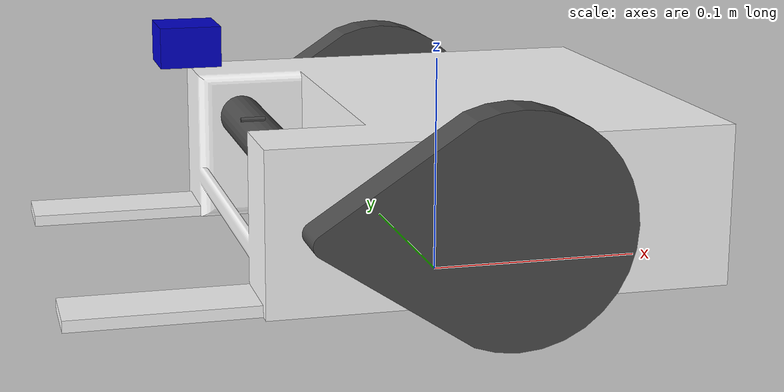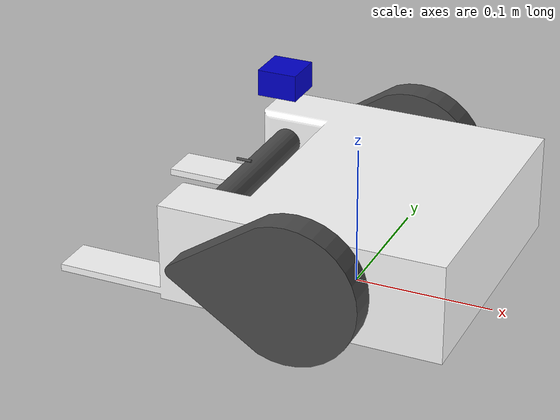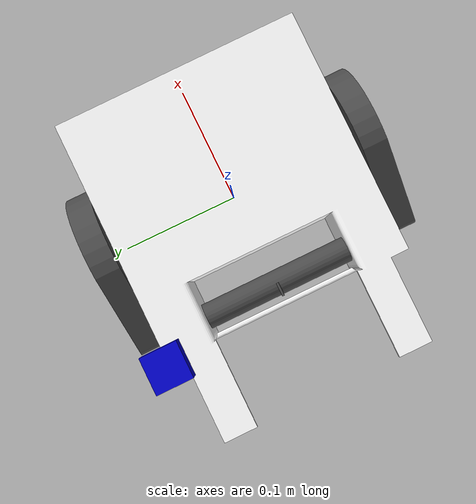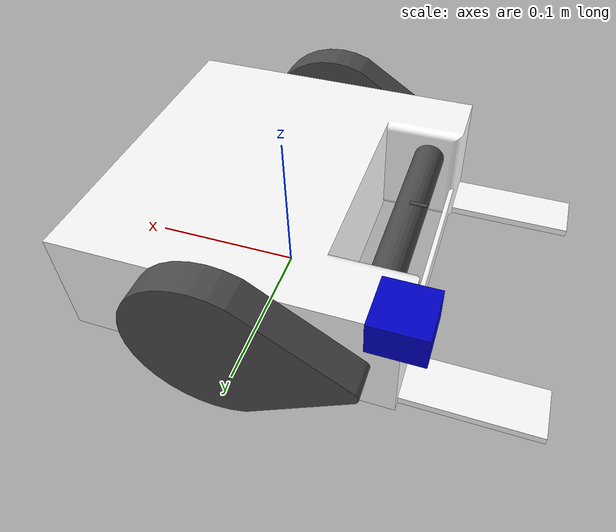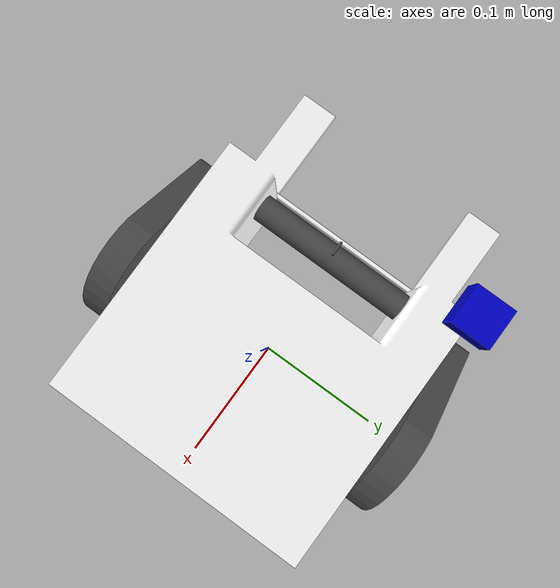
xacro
<?xml version="1.0"?>
<robot name="wapit" xmlns:xacro="http://www.ros.org/wiki/xacro">

<!-- Included URDF/XACRO Files -->
<xacro:include filename="$(find robot_pkg)/urdf/materials.urdf.xacro" />
<xacro:include filename="$(find robot_pkg)/urdf/wheel.urdf.xacro" />
<xacro:include filename="$(find robot_pkg)/urdf/square/tetherone.urdf.xacro" />
<xacro:include filename="$(find robot_pkg)/urdf/roll.urdf.xacro" />
<xacro:include filename="$(find robot_pkg)/urdf/camera.urdf.xacro" />

<!-- PROPERTY LIST -->
<!--All units in m-kg-s-radians unit system -->
<xacro:property name="M_PI" value="3.1415926535897931" />

<!-- Main Body-base -->
<xacro:property name="base_x_size" value="0.28" />
<xacro:property name="base_y_size" value="0.2" />
<xacro:property name="base_z_size" value="0.07" />
<xacro:property name="base_mass" value="3.00" /> <!-- in kg-->

<!--Inertial macros for the box and cylinder. Units are kg*m^2-->
<xacro:macro name="box_inertia" params="m x y z">
<inertia  ixx="${m*(y*y+z*z)/12.}" ixy = "0." ixz = "0."
iyy="${m*(x*x+z*z)/12.}" iyz = "0."
izz="${m*(x*x+z*z)/12.}" />
</xacro:macro>

<!-- BASE-FOOTPRINT -->
<!-- base_footprint is a fictitious link(frame) that is on the ground right below base_link origin -->
<link name="base_footprint"/>

<gazebo reference="base_footprint">
<turnGravityOff>false</turnGravityOff>
</gazebo>

<joint name="base_link_joint" type="fixed">
<origin xyz="0 0 ${wheel_radius - base_z_origin_to_wheel_origin}" rpy="0 0 0" />
<parent link="base_footprint"/>
<child link="base_link" />
</joint>

<!-- BASE-LINK -->
<!--Actual body/chassis of the robot-->
<link name="base_link">
<inertial>
<mass value="${base_mass}" />
<origin xyz="0 0 0" />
<!--The 3x3 rotational inertia matrix. -->
<box_inertia  m="${base_mass}" x="${base_x_size}" y="${base_y_size}" z="${base_z_size}"/>
</inertial>
<visual>
<origin xyz="0 0 0" rpy="0 0 0" />
<geometry>
<mesh filename="package://robot_pkg/dae/mentoribody.dae"/>
</geometry>
<material name="White" />
</visual>
<collision>
<origin xyz="0 0 0" rpy="0 0 0 " />
<geometry>
<mesh filename="package://robot_pkg/dae/mentoribody.dae"/>
</geometry>
</collision>
</link>
<gazebo reference="base_link">
<material>Gazebo/White</material>
<turnGravityOff>false</turnGravityOff>
<selfCollide>true</selfCollide>
</gazebo>

<!-- WHEELs ==translateX:,translateY:wheeljoint==-->
<wheel fb="front" lr="right" parent="base_link" translateX="1" translateY="-1" flipY="1"/>
<wheel fb="front" lr="left" parent="base_link" translateX="1" translateY="1" flipY="-1"/>

<tether tethernum="1" parent="roll_link" tether_origin="-0.08"/>

<roll parent="base_link"/>

<camera_macro parent="base_link"/>

<gazebo>

    <plugin name="differential_drive_controller" filename="libgazebo_ros_diff_drive.so">
      <legacyMode>false</legacyMode>
      <rosDebugLevel>Debug</rosDebugLevel>
      <publishWheelTF>false</publishWheelTF>
      <robotNamespace>/</robotNamespace>
      <publishTf>1</publishTf>
      <publishWheelJointState>true</publishWheelJointState>
      <alwaysOn>true</alwaysOn>
      <updateRate>100.0</updateRate>
      <leftJoint>front_left_wheel_joint</leftJoint>
      <rightJoint>front_right_wheel_joint</rightJoint>
      <wheelSeparation>${2*base_y_size}</wheelSeparation>
      <wheelDiameter>${2*wheel_radius}</wheelDiameter>
      <broadcastTF>1</broadcastTF>
      <wheelTorque>50</wheelTorque>
      <wheelAcceleration>1.0</wheelAcceleration>
      <commandTopic>cmd_vel</commandTopic>
      <odometryFrame>odom</odometryFrame>
      <odometryTopic>odom</odometryTopic>
      <robotBaseFrame>base_footprint</robotBaseFrame>
    </plugin>

<!--recommend over 50 torque to rotate-->

    <plugin name="gazebo_ros_control" filename="libgazebo_ros_control.so">
        <legacyModeNS>true</legacyModeNS>
    </plugin>

    <plugin name="ground_truth" filename="libgazebo_ros_p3d.so">
      <frameName>world</frameName>
      <bodyName>base_footprint</bodyName>
      <topicName>/tracker</topicName>
      <updateRate>2.0</updateRate>
    </plugin>

</gazebo>

</robot>

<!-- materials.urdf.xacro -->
<robot>
<material name="Black">
<color rgba="0.0 0.0 0.0 1.0"/>
</material>

<material name="Blue">
<color rgba="0.0 0.0 0.8 1.0"/>
</material>

<material name="Green">
<color rgba="0.0 0.8 0.0 1.0"/>
</material>

<material name="Gray">
<color rgba="0.7 0.7 0.7 1.0"/>
</material>

<material name="DarkGray">
<color rgba="0.3 0.3 0.3 1.0"/>
</material>

<material name="Red">
<color rgba="0.8 0.0 0.0 1.0"/>
</material>

<material name="White">
<color rgba="1.0 1.0 1.0 1.0"/>
</material>

<material name="Yellow">
<color rgba="0.8 0.8 0.0 1.0"/>
</material>
</robot>

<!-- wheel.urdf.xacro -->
<robot name="wheel" xmlns:xacro="http://ros.org/wiki/xacro">

<!-- Wheels -->
<xacro:property name="wheel_radius" value="0.05" />
<xacro:property name="wheel_height" value="0.02" />
<xacro:property name="wheel_mass" value="0.2" /> <!-- in kg-->

<xacro:property name="base_x_origin_to_wheel_origin" value="0.000" />
<xacro:property name="base_y_origin_to_wheel_origin" value="0.100" />
<xacro:property name="base_z_origin_to_wheel_origin" value="0.0" />

<xacro:macro name="cylinder_inertia" params="m r h">
<inertia  ixx="${m*(3*r*r+h*h)/12}" ixy = "0" ixz = "0"
iyy="${m*(3*r*r+h*h)/12}" iyz = "0"
izz="${m*r*r/2}" />
</xacro:macro>

<xacro:macro name="wheel" params="fb lr parent translateX translateY flipY">
<!--fb : front, back ; lr: left, right -->
<link name="${fb}_${lr}_wheel_link">
<visual>
<origin xyz="0 0 0" rpy="${flipY*M_PI/2} 0 0" />
<geometry>
<mesh filename="package://robot_pkg/dae/wheel.dae"/>
</geometry>
<material name="DarkGray" />
</visual>
<collision>
<origin xyz="0 0 0" rpy="${flipY*M_PI/2} 0 0" />
<geometry>
<mesh filename="package://robot_pkg/dae/wheel.dae"/>
</geometry>
</collision>
<inertial>
<mass value="${wheel_mass}" />
<origin xyz="0 0 0" />
<cylinder_inertia  m="${wheel_mass}" r="${wheel_radius}" h="${wheel_height}" />
</inertial>
</link>

<joint name="${fb}_${lr}_wheel_joint" type="continuous">
    <parent link="${parent}"/>
    <child link="${fb}_${lr}_wheel_link"/>
    <origin xyz="${translateX * base_x_origin_to_wheel_origin} ${translateY * base_y_origin_to_wheel_origin} ${base_z_origin_to_wheel_origin}" rpy="0 0 0" />
    <axis xyz="0 1 0" rpy="0 0 0" />
    <limit effort="1000" velocity="100"/>
    <joint_properties damping="0.0" friction="0.0"/>
</joint>

<!-- =========gazebo reference============ -->
<gazebo reference="${fb}_${lr}_wheel_link">
<mu1 value="1.0"/>
<mu2 value="1.0"/>
<kp  value="10000000.0" />
<kd  value="1.0" />
<fdir1 value="1 0 0"/>
<material>Gazebo/White</material>
<turnGravityOff>false</turnGravityOff>
</gazebo>

<!-- Transmission is important to link the joints and the controller -->
<transmission name="${fb}_${lr}_wheel_joint_trans">
<type>transmission_interface/SimpleTransmission</type>
<joint name="${fb}_${lr}_wheel_joint">
<hardwareInterface>hardware_interface/EffortJointInterface</hardwareInterface>
</joint>
<actuator name="${fb}_${lr}_wheel_joint_motor">
<mechanicalReduction>1</mechanicalReduction>
</actuator>
</transmission>

</xacro:macro>
</robot>

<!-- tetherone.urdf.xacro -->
<robot name="tether" xmlns:xacro="http://ros.org/wiki/xacro">

<!-- tether -->
<xacro:property name="tether_radius" value="0.001" />
S
<xacro:property name="tether_length" value="0.022" />
<xacro:property name="tether_mass" value="0.001" /> <!-- in kg-->
<xacro:property name="min_radius" value="0.001" />
<xacro:property name="min_length" value="0.0001" />
<xacro:property name="min_mass" value="0.00001" />

<xacro:property name="M_PI" value="3.1415926535897931" />

<xacro:macro name="cylinder_inertia" params="m r h">
<inertia  ixx="${m*(3*r*r+h*h)/12}" ixy = "0" ixz = "0"
iyy="${m*(3*r*r+h*h)/12}" iyz = "0"
izz="${m*r*r/2}" />
</xacro:macro>

<xacro:macro name="box_inertia" params="m x y z">
<inertia  ixx="${m*(y*y+z*z)/12.}" ixy = "0." ixz = "0."
iyy="${m*(x*x+z*z)/12.}" iyz = "0."
izz="${m*(x*x+z*z)/12.}" />
</xacro:macro>

<xacro:macro name="tether" params="tethernum parent tether_origin">
<!--fb : front, back ; lr: left, right -->

<link name="${tethernum}_base_link1">
<visual>
<origin xyz="-${0.011/2} 0 ${tether_radius}" rpy="0 ${M_PI/2} 0" />
<geometry>
<cylinder radius="${tether_radius}" length="0.011" />
</geometry>
<material name="DarkGray" />
</visual>
<collision>
<origin xyz="-${0.011/2} 0.03 ${tether_radius}" rpy="0 ${M_PI/2} 0" />
<geometry>
<cylinder radius="${tether_radius}" length="0.011" />
</geometry>
</collision>
<inertial>
<mass value="${tether_mass}" />
<origin xyz="-0.003 0 0" />
<cylinder_inertia  m="${tether_mass}" r="${tether_radius}" h="0.011" />
</inertial>
</link>

<joint name="${tethernum}_joint1_1" type="fixed">
    <parent link="${parent}"/>
    <child link="${tethernum}_base_link1"/>
    <axis xyz="0 0 1" />
    <origin xyz="0 0.06 0.01" rpy="0 0 0" />
    <joint_properties damping="0" friction="0"/>
</joint>

<!-- Transmission is important to link the joints and the controller -->

</xacro:macro>
</robot>

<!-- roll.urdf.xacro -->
<robot name="roll" xmlns:xacro="http://www.ros.org/wiki/xacro">

<xacro:property name="roll_radius" value="0.01" />
<xacro:property name="roll_height" value="0.12" />
<xacro:property name="roll_mass" value="0.01" /> <!-- in kg-->

<xacro:property name="base_x_origin_to_roll_origin" value="-0.080" />
<xacro:property name="base_y_origin_to_roll_origin" value="-0.060" />
<xacro:property name="base_z_origin_to_roll_origin" value="0.015" />

<xacro:macro name="cylinder_inertia" params="m r h">
<inertia  ixx="${m*(3*r*r+h*h)/12}" ixy = "0" ixz = "0"
iyy="${m*(3*r*r+h*h)/12}" iyz = "0"
izz="${m*r*r/2}" />
</xacro:macro>

<xacro:macro name="roll" params="parent">

<link name="roll_link">
<visual>
<origin xyz="0 0.06 0" rpy="${M_PI/2} 0 0" />
<geometry>
<cylinder length="${roll_height}" radius="${roll_radius}" />
</geometry>
<material name="DarkGray" />
</visual>
<collision>
<origin xyz="0 0.06 0" rpy="${M_PI/2} 0 0" />
<geometry>
<cylinder length="${roll_height}" radius="${roll_radius}" />
</geometry>
</collision>
<inertial>
<mass value="${roll_mass}" />
<origin xyz="0 0 0" />
<cylinder_inertia  m="${roll_mass}" r="${roll_radius}" h="${roll_height}" />
</inertial>
</link>

<joint name="roll_joint" type="continuous">
    <parent link="${parent}"/>
    <child link="roll_link"/>
    <origin xyz="${base_x_origin_to_roll_origin} ${base_y_origin_to_roll_origin} ${base_z_origin_to_roll_origin}" rpy="0 0 0" />
    <axis xyz="0 1 0" rpy="0 0 0" />
    <limit effort="100" velocity="10"/>
    <joint_properties damping="0" friction="0"/>
</joint>

<!-- =========gazebo reference============ -->
<gazebo reference="roll_link">
<mu1 value="1.0"/>
<mu2 value="1.0"/>
<kp  value="10000000.0" />
<kd  value="1.0" />
<fdir1 value="1 0 0"/>
<material>Gazebo/White</material>
<turnGravityOff>false</turnGravityOff>
<selfCollide>true</selfCollide>
</gazebo>

<!-- Transmission is important to link the joints and the controller -->
<transmission name="roll_joint_trans">
<type>transmission_interface/SimpleTransmission</type>
<joint name="roll_joint">
<hardwareInterface>hardware_interface/VelocityJointInterface</hardwareInterface>
</joint>
<actuator name="roll_joint_motor">
<hardwareInterface>hardware_interface/VelocityJointInterface</hardwareInterface>
<mechanicalReduction>1</mechanicalReduction>
</actuator>
</transmission>

</xacro:macro>
</robot>

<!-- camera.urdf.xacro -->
<robot name="camera" xmlns:xacro="http://ros.org/wiki/xacro">
  <xacro:macro name="camera_macro" params="parent">

    <joint name="camerabody_joint" type="fixed">
      <parent link="${parent}"/>
      <child  link="camerabody_link"/>
      <origin xyz="-0.1 0.1 0.035" rpy="0 0 0"/>
    </joint>

    <joint name="camera_joint" type="fixed">
      <parent link="${parent}"/>
      <child  link="camera_link"/>
      <origin xyz="-0.09 0.115 0.035" rpy="${radians(-120)} 0 0"/>
    </joint>

    <link name="camerabody_link">
    <visual>
    <origin xyz="0 0 0.01" rpy="0 0 0" />
    <geometry>
    <box size="0.03 0.03 0.02"/>
    </geometry>
    <material name="Blue" />
    </visual>
    <collision>
    <origin xyz="0 0 0.01" rpy="0 0 0" />
    <geometry>
    <box size="0.03 0.03 0.02"/>
    </geometry>
    </collision>
    <inertial>
    <mass value="0.0001" />
    <origin xyz="0 0 0" />
    <box_inertia  m="0.0001" x="0.03" y="0.03" z="0.02"/>
    </inertial>
    </link>

    <link name="camera_link"/>
    <gazebo reference="camera_link">
      <sensor type="camera" name="camera">
        <update_rate>30.0</update_rate>
        <camera name="camera">
          <pose>0 0 0 0 ${radians(-90)} ${radians(90)}</pose>
          <horizontal_fov>1.3962634</horizontal_fov>
          <image>
            <width>800</width>
            <height>600</height>
            <format>R8G8B8</format>
          </image>
          <clip>
            <near>0.02</near>
            <far>300</far>
          </clip>
          <noise>
            <type>gaussian</type>
            <mean>0.0</mean>
            <stddev>0.0</stddev>
          </noise>
        </camera>
        <plugin name="camera_controller" filename="libgazebo_ros_camera.so">
          <alwaysOn>true</alwaysOn>
          <updateRate>0.0</updateRate>
          <cameraName>camera</cameraName>
          <imageTopicName>image_raw</imageTopicName>
          <cameraInfoTopicName>camera_info</cameraInfoTopicName>
          <frameName>camera_link</frameName>
          <hackBaseline>0.0</hackBaseline>
          <distortionK1>0.0</distortionK1>
          <distortionK2>0.0</distortionK2>
          <distortionK3>0.0</distortionK3>
          <distortionT1>0.0</distortionT1>
          <distortionT2>0.0</distortionT2>
        </plugin>
      </sensor>
    </gazebo>
  </xacro:macro>

    <gazebo reference="camerabody_link">
    <material>Gazebo/Blue</material>
    </gazebo>

    <plugin name="ground_truth" filename="libgazebo_ros_p3d.so">
      <frameName>world</frameName>
      <bodyName>camera_link</bodyName>
      <topicName>/tracker</topicName>
      <updateRate>2.0</updateRate>
    </plugin>

</robot>
